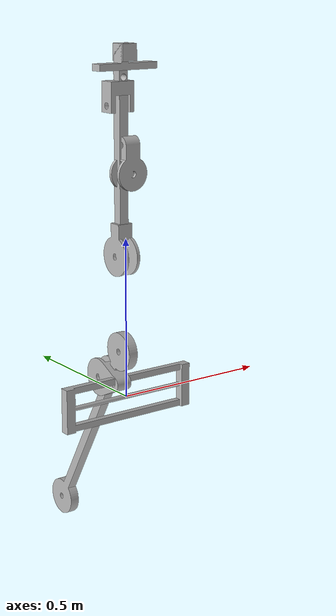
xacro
<?xml version="1.0" ?>
<robot name="karura_arm_2026" xmlns:xacro="http://www.ros.org/wiki/xacro">

<xacro:include filename="$(find karura_arm_description)/urdf/materials.xacro" />
<xacro:include filename="$(find karura_arm_description)/urdf/karura_arm_2026.gazebo" />

  <!-- Dummy Joints to fix missing kinematic chain -->
  <joint name="joint1" type="revolute">
    <parent link="base_link"/>
    <child link="link_1"/>
    <origin xyz="0 0 0.05" rpy="0 0 0"/>
    <axis xyz="0 0 1"/>
    <limit lower="-3.14159" upper="3.14159" effort="100" velocity="1.0"/>
  </joint>

  <joint name="joint2" type="revolute">
    <parent link="link_1"/>
    <child link="link_2"/>
    <origin xyz="0 0 0.1" rpy="0 0 0"/>
    <axis xyz="0 1 0"/>
    <limit lower="-3.14159" upper="3.14159" effort="100" velocity="1.0"/>
  </joint>

  <joint name="joint3" type="revolute">
    <parent link="link_2"/>
    <child link="link_3"/>
    <origin xyz="0 0 0.3" rpy="0 0 0"/>
    <axis xyz="0 1 0"/>
    <limit lower="-3.14159" upper="3.14159" effort="100" velocity="1.0"/>
  </joint>

  <joint name="joint4" type="revolute">
    <parent link="link_3"/>
    <child link="link_4"/>
    <origin xyz="0 0 0.25" rpy="0 0 0"/>
    <axis xyz="0 1 0"/>
    <limit lower="-3.14159" upper="3.14159" effort="100" velocity="1.0"/>
  </joint>

  <joint name="joint5" type="revolute">
    <parent link="link_4"/>
    <child link="link_5"/>
    <origin xyz="0 0 0.2" rpy="0 0 0"/>
    <axis xyz="0 0 1"/>
    <limit lower="-3.14159" upper="3.14159" effort="100" velocity="1.0"/>
  </joint>

  <joint name="joint6" type="revolute">
    <parent link="link_5"/>
    <child link="link_6"/>
    <origin xyz="0 0 0.1" rpy="0 0 0"/>
    <axis xyz="0 1 0"/>
    <limit lower="-3.14159" upper="3.14159" effort="100" velocity="1.0"/>
  </joint>

  <link name="link_7">
    <inertial>
      <origin xyz="0 0 0" rpy="0 0 0"/>
      <mass value="0.1"/>
      <inertia ixx="0.001" iyy="0.001" izz="0.001" ixy="0" iyz="0" ixz="0"/>
    </inertial>
    <visual>
      <origin xyz="0 0 0" rpy="0 0 0"/>
      <geometry>
        <box size="0.05 0.05 0.05"/>
      </geometry>
      <material name="silver"/>
    </visual>
    <collision>
      <origin xyz="0 0 0" rpy="0 0 0"/>
      <geometry>
        <box size="0.05 0.05 0.05"/>
      </geometry>
    </collision>
  </link>

  <joint name="hand" type="fixed">
    <parent link="link_6"/>
    <child link="link_7"/>
    <origin xyz="0 0 0.05" rpy="0 0 0"/>
  </joint>

<link name="base_link">
  <inertial>
    <origin xyz="0.0 -0.0019605224387384294 0.0" rpy="0 0 0"/>
    <mass value="1.7352517537055798"/>
    <inertia ixx="0.004346" iyy="0.04982" izz="0.04566" ixy="0.0" iyz="0.0" ixz="-0.0"/>
  </inertial>
  <visual>
    <origin xyz="0 0 0" rpy="0 0 0"/>
    <geometry>
      <mesh filename="package://karura_arm_description/meshes/base_link.stl" scale="0.001 0.001 0.001"/>
    </geometry>
    <material name="silver"/>
  </visual>
  <collision>
    <origin xyz="0 0 0" rpy="0 0 0"/>
    <geometry>
      <mesh filename="package://karura_arm_description/meshes/base_link.stl" scale="0.001 0.001 0.001"/>
    </geometry>
  </collision>
</link>

<link name="link_1">
  <inertial>
    <origin xyz="-0.024999999999999994 0.05627611655184509 6.490807891168515e-14" rpy="0 0 0"/>
    <mass value="0.957947254679481"/>
    <inertia ixx="0.002655" iyy="0.001032" izz="0.002259" ixy="0.0" iyz="0.0" ixz="0.0"/>
  </inertial>
  <visual>
    <origin xyz="-0.0 -0.0 -0.0" rpy="0 0 0"/>
    <geometry>
      <mesh filename="package://karura_arm_description/meshes/link_1.stl" scale="0.001 0.001 0.001"/>
    </geometry>
    <material name="silver"/>
  </visual>
  <collision>
    <origin xyz="-0.0 -0.0 -0.0" rpy="0 0 0"/>
    <geometry>
      <mesh filename="package://karura_arm_description/meshes/link_1.stl" scale="0.001 0.001 0.001"/>
    </geometry>
  </collision>
</link>

<link name="link_2">
  <inertial>
    <origin xyz="-0.015000000000000022 0.1749999999994843 -0.303108891324537" rpy="0 0 0"/>
    <mass value="3.19374966681729"/>
    <inertia ixx="0.261378" iyy="0.195396" izz="0.066461" ixy="-0.0" iyz="0.111661" ixz="0.0"/>
  </inertial>
  <visual>
    <origin xyz="-0.0 -0.085 -0.0" rpy="0 0 0"/>
    <geometry>
      <mesh filename="package://karura_arm_description/meshes/link_2.stl" scale="0.001 0.001 0.001"/>
    </geometry>
    <material name="silver"/>
  </visual>
  <collision>
    <origin xyz="-0.0 -0.085 -0.0" rpy="0 0 0"/>
    <geometry>
      <mesh filename="package://karura_arm_description/meshes/link_2.stl" scale="0.001 0.001 0.001"/>
    </geometry>
  </collision>
</link>

<link name="link_3">
  <inertial>
    <origin xyz="-0.014999999999999975 9.865630157046557e-05 0.188870154036672" rpy="0 0 0"/>
    <mass value="1.8940346462606914"/>
    <inertia ixx="0.061057" iyy="0.060769" izz="0.001029" ixy="0.0" iyz="-1e-05" ixz="0.0"/>
  </inertial>
  <visual>
    <origin xyz="0.0 -0.435 0.606218" rpy="0 0 0"/>
    <geometry>
      <mesh filename="package://karura_arm_description/meshes/link_3.stl" scale="0.001 0.001 0.001"/>
    </geometry>
    <material name="silver"/>
  </visual>
  <collision>
    <origin xyz="0.0 -0.435 0.606218" rpy="0 0 0"/>
    <geometry>
      <mesh filename="package://karura_arm_description/meshes/link_3.stl" scale="0.001 0.001 0.001"/>
    </geometry>
  </collision>
</link>

<link name="link_4">
  <inertial>
    <origin xyz="1.2177238384314393e-13 -0.015000000000000013 0.03485142850381961" rpy="0 0 0"/>
    <mass value="0.8015274480326815"/>
    <inertia ixx="0.00167" iyy="0.001777" izz="0.000591" ixy="0.0" iyz="-0.0" ixz="0.0"/>
  </inertial>
  <visual>
    <origin xyz="0.015 -0.45 0.076218" rpy="0 0 0"/>
    <geometry>
      <mesh filename="package://karura_arm_description/meshes/link_4.stl" scale="0.001 0.001 0.001"/>
    </geometry>
    <material name="silver"/>
  </visual>
  <collision>
    <origin xyz="0.015 -0.45 0.076218" rpy="0 0 0"/>
    <geometry>
      <mesh filename="package://karura_arm_description/meshes/link_4.stl" scale="0.001 0.001 0.001"/>
    </geometry>
  </collision>
</link>

<link name="link_5">
  <inertial>
    <origin xyz="-0.024999999999999963 -5.551115123125783e-17 0.037127522044594984" rpy="0 0 0"/>
    <mass value="0.6090530995059226"/>
    <inertia ixx="0.000476" iyy="0.000765" izz="0.000552" ixy="0.0" iyz="0.0" ixz="-0.0"/>
  </inertial>
  <visual>
    <origin xyz="-0.01 -0.435 -0.008782" rpy="0 0 0"/>
    <geometry>
      <mesh filename="package://karura_arm_description/meshes/link_5.stl" scale="0.001 0.001 0.001"/>
    </geometry>
    <material name="silver"/>
  </visual>
  <collision>
    <origin xyz="-0.01 -0.435 -0.008782" rpy="0 0 0"/>
    <geometry>
      <mesh filename="package://karura_arm_description/meshes/link_5.stl" scale="0.001 0.001 0.001"/>
    </geometry>
  </collision>
</link>

<link name="link_6">
  <inertial>
    <origin xyz="-0.0031976744186046173 -5.551115123125783e-17 0.01959324060670692" rpy="0 0 0"/>
    <mass value="0.5804999999999999"/>
    <inertia ixx="0.000285" iyy="0.001672" izz="0.001542" ixy="-0.0" iyz="0.0" ixz="5.2e-05"/>
  </inertial>
  <visual>
    <origin xyz="0.015 -0.435 -0.078782" rpy="0 0 0"/>
    <geometry>
      <mesh filename="package://karura_arm_description/meshes/link_6.stl" scale="0.001 0.001 0.001"/>
    </geometry>
    <material name="silver"/>
  </visual>
  <collision>
    <origin xyz="0.015 -0.435 -0.078782" rpy="0 0 0"/>
    <geometry>
      <mesh filename="package://karura_arm_description/meshes/link_6.stl" scale="0.001 0.001 0.001"/>
    </geometry>
  </collision>
</link>

</robot>

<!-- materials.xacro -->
<robot name="karura_arm_2026" xmlns:xacro="http://www.ros.org/wiki/xacro" >

<material name="silver">
  <color rgba="0.700 0.700 0.700 1.000"/>
</material>

</robot>

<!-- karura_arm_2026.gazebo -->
<robot name="karura_arm_2026" xmlns:xacro="http://www.ros.org/wiki/xacro" >

<xacro:property name="body_color" value="Gazebo/Silver" />

<gazebo>
  <plugin name="control" filename="libgazebo_ros_control.so"/>
</gazebo>
<gazebo reference="base_link">
  <material>${body_color}</material>
  <mu1>0.2</mu1>
  <mu2>0.2</mu2>
  <self_collide>true</self_collide>
  <gravity>true</gravity>
</gazebo>

<gazebo reference="link_1">
  <material>${body_color}</material>
  <mu1>0.2</mu1>
  <mu2>0.2</mu2>
  <self_collide>true</self_collide>
</gazebo>

<gazebo reference="link_2">
  <material>${body_color}</material>
  <mu1>0.2</mu1>
  <mu2>0.2</mu2>
  <self_collide>true</self_collide>
</gazebo>

<gazebo reference="link_3">
  <material>${body_color}</material>
  <mu1>0.2</mu1>
  <mu2>0.2</mu2>
  <self_collide>true</self_collide>
</gazebo>

<gazebo reference="link_4">
  <material>${body_color}</material>
  <mu1>0.2</mu1>
  <mu2>0.2</mu2>
  <self_collide>true</self_collide>
</gazebo>

<gazebo reference="link_5">
  <material>${body_color}</material>
  <mu1>0.2</mu1>
  <mu2>0.2</mu2>
  <self_collide>true</self_collide>
</gazebo>

<gazebo reference="link_6">
  <material>${body_color}</material>
  <mu1>0.2</mu1>
  <mu2>0.2</mu2>
  <self_collide>true</self_collide>
</gazebo>

<gazebo reference="link_7">
  <material>${body_color}</material>
  <mu1>0.2</mu1>
  <mu2>0.2</mu2>
  <self_collide>true</self_collide>
</gazebo>

</robot>
